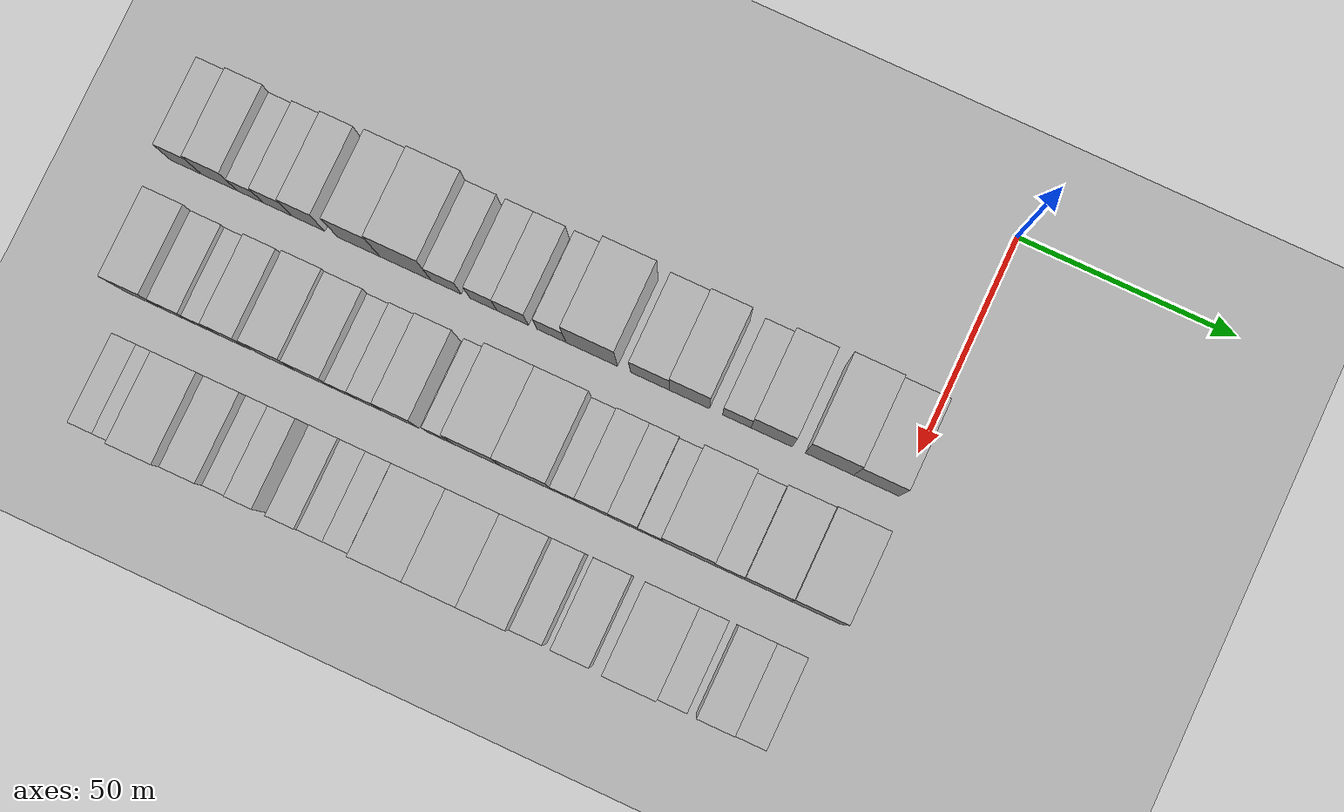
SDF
<sdf version="1.6">
 <world name="default">
  <include><name>ground_plane_1</name><uri>model://HANNAS_ground_plane</uri></include>
  <include>
   <name>ground_plane_2</name>
   <uri>model://HANNAS_ground_plane</uri>
   <pose>100 0 0  0 0 0</pose>
  </include>
  <model name="building_20">
   <static>1</static>
   <pose>50.0000 -164.2807 0 0.000000 0.000000 0.000000</pose>
   <link name="link">
    <pose>0 0 7.50 0 0 0</pose>
    <collision name="collision"><geometry><box><size>20.0000 7.2771 15.0000</size></box></geometry></collision>
    <visual name="visual">
     <cast_shadows>0</cast_shadows>
     <geometry><box><size>20.0000 7.2771 15.0000</size></box></geometry>
     <material>
      <script>
       <uri>model://HANNAS_wall/materials/scripts</uri>
       <uri>model://HANNAS_wall/materials/textures</uri>
       <name>vrc/HANNAS_wall</name>
      </script>
     </material>
    </visual>
   </link>
  </model>
  <model name="building_21">
   <static>1</static>
   <pose>50.0000 -156.4418 0 0.000000 0.000000 0.000000</pose>
   <link name="link">
    <pose>0 0 9.00 0 0 0</pose>
    <collision name="collision"><geometry><box><size>20.0000 8.4006 18.0000</size></box></geometry></collision>
    <visual name="visual">
     <cast_shadows>0</cast_shadows>
     <geometry><box><size>20.0000 8.4006 18.0000</size></box></geometry>
     <material>
      <script>
       <uri>model://HANNAS_wall/materials/scripts</uri>
       <uri>model://HANNAS_wall/materials/textures</uri>
       <name>vrc/HANNAS_wall</name>
      </script>
     </material>
    </visual>
   </link>
  </model>
  <model name="building_22">
   <static>1</static>
   <pose>50.0000 -149.2605 0 0.000000 0.000000 0.000000</pose>
   <link name="link">
    <pose>0 0 6.00 0 0 0</pose>
    <collision name="collision"><geometry><box><size>20.0000 5.9621 12.0000</size></box></geometry></collision>
    <visual name="visual">
     <cast_shadows>0</cast_shadows>
     <geometry><box><size>20.0000 5.9621 12.0000</size></box></geometry>
     <material>
      <script>
       <uri>model://HANNAS_wall/materials/scripts</uri>
       <uri>model://HANNAS_wall/materials/textures</uri>
       <name>vrc/HANNAS_wall</name>
      </script>
     </material>
    </visual>
   </link>
  </model>
  <model name="building_23">
   <static>1</static>
   <pose>50.0000 -142.8116 0 0.000000 0.000000 0.000000</pose>
   <link name="link">
    <pose>0 0 7.50 0 0 0</pose>
    <collision name="collision"><geometry><box><size>20.0000 6.9357 15.0000</size></box></geometry></collision>
    <visual name="visual">
     <cast_shadows>0</cast_shadows>
     <geometry><box><size>20.0000 6.9357 15.0000</size></box></geometry>
     <material>
      <script>
       <uri>model://HANNAS_wall/materials/scripts</uri>
       <uri>model://HANNAS_wall/materials/textures</uri>
       <name>vrc/HANNAS_wall</name>
      </script>
     </material>
    </visual>
   </link>
  </model>
  <model name="building_24">
   <static>1</static>
   <pose>50.0000 -135.6105 0 0.000000 0.000000 0.000000</pose>
   <link name="link">
    <pose>0 0 9.00 0 0 0</pose>
    <collision name="collision"><geometry><box><size>20.0000 7.4665 18.0000</size></box></geometry></collision>
    <visual name="visual">
     <cast_shadows>0</cast_shadows>
     <geometry><box><size>20.0000 7.4665 18.0000</size></box></geometry>
     <material>
      <script>
       <uri>model://HANNAS_wall/materials/scripts</uri>
       <uri>model://HANNAS_wall/materials/textures</uri>
       <name>vrc/HANNAS_wall</name>
      </script>
     </material>
    </visual>
   </link>
  </model>
  <model name="building_25">
   <static>1</static>
   <pose>50.0000 -123.9901 0 0.000000 0.000000 0.000000</pose>
   <link name="link">
    <pose>0 0 10.50 0 0 0</pose>
    <collision name="collision"><geometry><box><size>20.0000 9.7743 21.0000</size></box></geometry></collision>
    <visual name="visual">
     <cast_shadows>0</cast_shadows>
     <geometry><box><size>20.0000 9.7743 21.0000</size></box></geometry>
     <material>
      <script>
       <uri>model://HANNAS_wall/materials/scripts</uri>
       <uri>model://HANNAS_wall/materials/textures</uri>
       <name>vrc/HANNAS_wall</name>
      </script>
     </material>
    </visual>
   </link>
  </model>
  <model name="building_26">
   <static>1</static>
   <pose>50.0000 -113.1574 0 0.000000 0.000000 0.000000</pose>
   <link name="link">
    <pose>0 0 12.00 0 0 0</pose>
    <collision name="collision"><geometry><box><size>20.0000 11.8910 24.0000</size></box></geometry></collision>
    <visual name="visual">
     <cast_shadows>0</cast_shadows>
     <geometry><box><size>20.0000 11.8910 24.0000</size></box></geometry>
     <material>
      <script>
       <uri>model://HANNAS_wall/materials/scripts</uri>
       <uri>model://HANNAS_wall/materials/textures</uri>
       <name>vrc/HANNAS_wall</name>
      </script>
     </material>
    </visual>
   </link>
  </model>
  <model name="building_27">
   <static>1</static>
   <pose>50.0000 -103.7190 0 0.000000 0.000000 0.000000</pose>
   <link name="link">
    <pose>0 0 7.50 0 0 0</pose>
    <collision name="collision"><geometry><box><size>20.0000 6.9859 15.0000</size></box></geometry></collision>
    <visual name="visual">
     <cast_shadows>0</cast_shadows>
     <geometry><box><size>20.0000 6.9859 15.0000</size></box></geometry>
     <material>
      <script>
       <uri>model://HANNAS_wall/materials/scripts</uri>
       <uri>model://HANNAS_wall/materials/textures</uri>
       <name>vrc/HANNAS_wall</name>
      </script>
     </material>
    </visual>
   </link>
  </model>
  <model name="building_28">
   <static>1</static>
   <pose>50.0000 -95.0902 0 0.000000 0.000000 0.000000</pose>
   <link name="link">
    <pose>0 0 7.50 0 0 0</pose>
    <collision name="collision"><geometry><box><size>20.0000 6.2716 15.0000</size></box></geometry></collision>
    <visual name="visual">
     <cast_shadows>0</cast_shadows>
     <geometry><box><size>20.0000 6.2716 15.0000</size></box></geometry>
     <material>
      <script>
       <uri>model://HANNAS_wall/materials/scripts</uri>
       <uri>model://HANNAS_wall/materials/textures</uri>
       <name>vrc/HANNAS_wall</name>
      </script>
     </material>
    </visual>
   </link>
  </model>
  <model name="building_29">
   <static>1</static>
   <pose>50.0000 -88.3531 0 0.000000 0.000000 0.000000</pose>
   <link name="link">
    <pose>0 0 7.50 0 0 0</pose>
    <collision name="collision"><geometry><box><size>20.0000 7.2026 15.0000</size></box></geometry></collision>
    <visual name="visual">
     <cast_shadows>0</cast_shadows>
     <geometry><box><size>20.0000 7.2026 15.0000</size></box></geometry>
     <material>
      <script>
       <uri>model://HANNAS_wall/materials/scripts</uri>
       <uri>model://HANNAS_wall/materials/textures</uri>
       <name>vrc/HANNAS_wall</name>
      </script>
     </material>
    </visual>
   </link>
  </model>
  <model name="building_30">
   <static>1</static>
   <pose>50.0000 -79.4296 0 0.000000 0.000000 0.000000</pose>
   <link name="link">
    <pose>0 0 7.50 0 0 0</pose>
    <collision name="collision"><geometry><box><size>20.0000 6.6446 15.0000</size></box></geometry></collision>
    <visual name="visual">
     <cast_shadows>0</cast_shadows>
     <geometry><box><size>20.0000 6.6446 15.0000</size></box></geometry>
     <material>
      <script>
       <uri>model://HANNAS_wall/materials/scripts</uri>
       <uri>model://HANNAS_wall/materials/textures</uri>
       <name>vrc/HANNAS_wall</name>
      </script>
     </material>
    </visual>
   </link>
  </model>
  <model name="building_31">
   <static>1</static>
   <pose>50.0000 -70.2010 0 0.000000 0.000000 0.000000</pose>
   <link name="link">
    <pose>0 0 12.00 0 0 0</pose>
    <collision name="collision"><geometry><box><size>20.0000 11.8125 24.0000</size></box></geometry></collision>
    <visual name="visual">
     <cast_shadows>0</cast_shadows>
     <geometry><box><size>20.0000 11.8125 24.0000</size></box></geometry>
     <material>
      <script>
       <uri>model://HANNAS_wall/materials/scripts</uri>
       <uri>model://HANNAS_wall/materials/textures</uri>
       <name>vrc/HANNAS_wall</name>
      </script>
     </material>
    </visual>
   </link>
  </model>
  <model name="building_32">
   <static>1</static>
   <pose>50.0000 -56.8380 0 0.000000 0.000000 0.000000</pose>
   <link name="link">
    <pose>0 0 9.00 0 0 0</pose>
    <collision name="collision"><geometry><box><size>20.0000 8.9135 18.0000</size></box></geometry></collision>
    <visual name="visual">
     <cast_shadows>0</cast_shadows>
     <geometry><box><size>20.0000 8.9135 18.0000</size></box></geometry>
     <material>
      <script>
       <uri>model://HANNAS_wall/materials/scripts</uri>
       <uri>model://HANNAS_wall/materials/textures</uri>
       <name>vrc/HANNAS_wall</name>
      </script>
     </material>
    </visual>
   </link>
  </model>
  <model name="building_33">
   <static>1</static>
   <pose>50.0000 -47.8218 0 0.000000 0.000000 0.000000</pose>
   <link name="link">
    <pose>0 0 10.50 0 0 0</pose>
    <collision name="collision"><geometry><box><size>20.0000 9.1189 21.0000</size></box></geometry></collision>
    <visual name="visual">
     <cast_shadows>0</cast_shadows>
     <geometry><box><size>20.0000 9.1189 21.0000</size></box></geometry>
     <material>
      <script>
       <uri>model://HANNAS_wall/materials/scripts</uri>
       <uri>model://HANNAS_wall/materials/textures</uri>
       <name>vrc/HANNAS_wall</name>
      </script>
     </material>
    </visual>
   </link>
  </model>
  <model name="building_34">
   <static>1</static>
   <pose>50.0000 -37.0058 0 0.000000 0.000000 0.000000</pose>
   <link name="link">
    <pose>0 0 7.50 0 0 0</pose>
    <collision name="collision"><geometry><box><size>20.0000 6.5132 15.0000</size></box></geometry></collision>
    <visual name="visual">
     <cast_shadows>0</cast_shadows>
     <geometry><box><size>20.0000 6.5132 15.0000</size></box></geometry>
     <material>
      <script>
       <uri>model://HANNAS_wall/materials/scripts</uri>
       <uri>model://HANNAS_wall/materials/textures</uri>
       <name>vrc/HANNAS_wall</name>
      </script>
     </material>
    </visual>
   </link>
  </model>
  <model name="building_35">
   <static>1</static>
   <pose>50.0000 -29.0701 0 0.000000 0.000000 0.000000</pose>
   <link name="link">
    <pose>0 0 10.50 0 0 0</pose>
    <collision name="collision"><geometry><box><size>20.0000 9.3582 21.0000</size></box></geometry></collision>
    <visual name="visual">
     <cast_shadows>0</cast_shadows>
     <geometry><box><size>20.0000 9.3582 21.0000</size></box></geometry>
     <material>
      <script>
       <uri>model://HANNAS_wall/materials/scripts</uri>
       <uri>model://HANNAS_wall/materials/textures</uri>
       <name>vrc/HANNAS_wall</name>
      </script>
     </material>
    </visual>
   </link>
  </model>
  <model name="building_36">
   <static>1</static>
   <pose>50.0000 -15.8890 0 0.000000 0.000000 0.000000</pose>
   <link name="link">
    <pose>0 0 12.00 0 0 0</pose>
    <collision name="collision"><geometry><box><size>20.0000 11.0039 24.0000</size></box></geometry></collision>
    <visual name="visual">
     <cast_shadows>0</cast_shadows>
     <geometry><box><size>20.0000 11.0039 24.0000</size></box></geometry>
     <material>
      <script>
       <uri>model://HANNAS_wall/materials/scripts</uri>
       <uri>model://HANNAS_wall/materials/textures</uri>
       <name>vrc/HANNAS_wall</name>
      </script>
     </material>
    </visual>
   </link>
  </model>
  <model name="building_37">
   <static>1</static>
   <pose>50.0000 -5.2631 0 0.000000 0.000000 0.000000</pose>
   <link name="link">
    <pose>0 0 10.50 0 0 0</pose>
    <collision name="collision"><geometry><box><size>20.0000 10.2481 21.0000</size></box></geometry></collision>
    <visual name="visual">
     <cast_shadows>0</cast_shadows>
     <geometry><box><size>20.0000 10.2481 21.0000</size></box></geometry>
     <material>
      <script>
       <uri>model://HANNAS_wall/materials/scripts</uri>
       <uri>model://HANNAS_wall/materials/textures</uri>
       <name>vrc/HANNAS_wall</name>
      </script>
     </material>
    </visual>
   </link>
  </model>
  <model name="building_92">
   <static>1</static>
   <pose>79.0000 -159.4178 0 0.000000 0.000000 0.000000</pose>
   <link name="link">
    <pose>0 0 10.50 0 0 0</pose>
    <collision name="collision"><geometry><box><size>20.0000 8.9684 21.0000</size></box></geometry></collision>
    <visual name="visual">
     <cast_shadows>0</cast_shadows>
     <geometry><box><size>20.0000 8.9684 21.0000</size></box></geometry>
     <material>
      <script>
       <uri>model://HANNAS_wall/materials/scripts</uri>
       <uri>model://HANNAS_wall/materials/textures</uri>
       <name>vrc/HANNAS_wall</name>
      </script>
     </material>
    </visual>
   </link>
  </model>
  <model name="building_93">
   <static>1</static>
   <pose>79.0000 -151.4813 0 0.000000 0.000000 0.000000</pose>
   <link name="link">
    <pose>0 0 7.50 0 0 0</pose>
    <collision name="collision"><geometry><box><size>20.0000 6.9046 15.0000</size></box></geometry></collision>
    <visual name="visual">
     <cast_shadows>0</cast_shadows>
     <geometry><box><size>20.0000 6.9046 15.0000</size></box></geometry>
     <material>
      <script>
       <uri>model://HANNAS_wall/materials/scripts</uri>
       <uri>model://HANNAS_wall/materials/textures</uri>
       <name>vrc/HANNAS_wall</name>
      </script>
     </material>
    </visual>
   </link>
  </model>
  <model name="building_94">
   <static>1</static>
   <pose>79.0000 -145.1459 0 0.000000 0.000000 0.000000</pose>
   <link name="link">
    <pose>0 0 6.00 0 0 0</pose>
    <collision name="collision"><geometry><box><size>20.0000 5.7663 12.0000</size></box></geometry></collision>
    <visual name="visual">
     <cast_shadows>0</cast_shadows>
     <geometry><box><size>20.0000 5.7663 12.0000</size></box></geometry>
     <material>
      <script>
       <uri>model://HANNAS_wall/materials/scripts</uri>
       <uri>model://HANNAS_wall/materials/textures</uri>
       <name>vrc/HANNAS_wall</name>
      </script>
     </material>
    </visual>
   </link>
  </model>
  <model name="building_95">
   <static>1</static>
   <pose>79.0000 -138.6442 0 0.000000 0.000000 0.000000</pose>
   <link name="link">
    <pose>0 0 9.00 0 0 0</pose>
    <collision name="collision"><geometry><box><size>20.0000 7.2369 18.0000</size></box></geometry></collision>
    <visual name="visual">
     <cast_shadows>0</cast_shadows>
     <geometry><box><size>20.0000 7.2369 18.0000</size></box></geometry>
     <material>
      <script>
       <uri>model://HANNAS_wall/materials/scripts</uri>
       <uri>model://HANNAS_wall/materials/textures</uri>
       <name>vrc/HANNAS_wall</name>
      </script>
     </material>
    </visual>
   </link>
  </model>
  <model name="building_96">
   <static>1</static>
   <pose>79.0000 -128.6386 0 0.000000 0.000000 0.000000</pose>
   <link name="link">
    <pose>0 0 10.50 0 0 0</pose>
    <collision name="collision"><geometry><box><size>20.0000 8.7743 21.0000</size></box></geometry></collision>
    <visual name="visual">
     <cast_shadows>0</cast_shadows>
     <geometry><box><size>20.0000 8.7743 21.0000</size></box></geometry>
     <material>
      <script>
       <uri>model://HANNAS_wall/materials/scripts</uri>
       <uri>model://HANNAS_wall/materials/textures</uri>
       <name>vrc/HANNAS_wall</name>
      </script>
     </material>
    </visual>
   </link>
  </model>
  <model name="building_97">
   <static>1</static>
   <pose>79.0000 -120.0052 0 0.000000 0.000000 0.000000</pose>
   <link name="link">
    <pose>0 0 9.00 0 0 0</pose>
    <collision name="collision"><geometry><box><size>20.0000 8.4926 18.0000</size></box></geometry></collision>
    <visual name="visual">
     <cast_shadows>0</cast_shadows>
     <geometry><box><size>20.0000 8.4926 18.0000</size></box></geometry>
     <material>
      <script>
       <uri>model://HANNAS_wall/materials/scripts</uri>
       <uri>model://HANNAS_wall/materials/textures</uri>
       <name>vrc/HANNAS_wall</name>
      </script>
     </material>
    </visual>
   </link>
  </model>
  <model name="building_98">
   <static>1</static>
   <pose>79.0000 -113.0529 0 0.000000 0.000000 0.000000</pose>
   <link name="link">
    <pose>0 0 6.00 0 0 0</pose>
    <collision name="collision"><geometry><box><size>20.0000 5.4120 12.0000</size></box></geometry></collision>
    <visual name="visual">
     <cast_shadows>0</cast_shadows>
     <geometry><box><size>20.0000 5.4120 12.0000</size></box></geometry>
     <material>
      <script>
       <uri>model://HANNAS_wall/materials/scripts</uri>
       <uri>model://HANNAS_wall/materials/textures</uri>
       <name>vrc/HANNAS_wall</name>
      </script>
     </material>
    </visual>
   </link>
  </model>
  <model name="building_99">
   <static>1</static>
   <pose>79.0000 -107.2950 0 0.000000 0.000000 0.000000</pose>
   <link name="link">
    <pose>0 0 7.50 0 0 0</pose>
    <collision name="collision"><geometry><box><size>20.0000 6.1037 15.0000</size></box></geometry></collision>
    <visual name="visual">
     <cast_shadows>0</cast_shadows>
     <geometry><box><size>20.0000 6.1037 15.0000</size></box></geometry>
     <material>
      <script>
       <uri>model://HANNAS_wall/materials/scripts</uri>
       <uri>model://HANNAS_wall/materials/textures</uri>
       <name>vrc/HANNAS_wall</name>
      </script>
     </material>
    </visual>
   </link>
  </model>
  <model name="building_100">
   <static>1</static>
   <pose>79.0000 -100.1335 0 0.000000 0.000000 0.000000</pose>
   <link name="link">
    <pose>0 0 9.00 0 0 0</pose>
    <collision name="collision"><geometry><box><size>20.0000 8.2194 18.0000</size></box></geometry></collision>
    <visual name="visual">
     <cast_shadows>0</cast_shadows>
     <geometry><box><size>20.0000 8.2194 18.0000</size></box></geometry>
     <material>
      <script>
       <uri>model://HANNAS_wall/materials/scripts</uri>
       <uri>model://HANNAS_wall/materials/textures</uri>
       <name>vrc/HANNAS_wall</name>
      </script>
     </material>
    </visual>
   </link>
  </model>
  <model name="building_101">
   <static>1</static>
   <pose>79.0000 -91.0988 0 0.000000 0.000000 0.000000</pose>
   <link name="link">
    <pose>0 0 6.00 0 0 0</pose>
    <collision name="collision"><geometry><box><size>20.0000 5.8499 12.0000</size></box></geometry></collision>
    <visual name="visual">
     <cast_shadows>0</cast_shadows>
     <geometry><box><size>20.0000 5.8499 12.0000</size></box></geometry>
     <material>
      <script>
       <uri>model://HANNAS_wall/materials/scripts</uri>
       <uri>model://HANNAS_wall/materials/textures</uri>
       <name>vrc/HANNAS_wall</name>
      </script>
     </material>
    </visual>
   </link>
  </model>
  <model name="building_102">
   <static>1</static>
   <pose>79.0000 -82.7172 0 0.000000 0.000000 0.000000</pose>
   <link name="link">
    <pose>0 0 12.00 0 0 0</pose>
    <collision name="collision"><geometry><box><size>20.0000 10.9133 24.0000</size></box></geometry></collision>
    <visual name="visual">
     <cast_shadows>0</cast_shadows>
     <geometry><box><size>20.0000 10.9133 24.0000</size></box></geometry>
     <material>
      <script>
       <uri>model://HANNAS_wall/materials/scripts</uri>
       <uri>model://HANNAS_wall/materials/textures</uri>
       <name>vrc/HANNAS_wall</name>
      </script>
     </material>
    </visual>
   </link>
  </model>
  <model name="building_103">
   <static>1</static>
   <pose>79.0000 -71.3776 0 0.000000 0.000000 0.000000</pose>
   <link name="link">
    <pose>0 0 12.00 0 0 0</pose>
    <collision name="collision"><geometry><box><size>20.0000 11.7660 24.0000</size></box></geometry></collision>
    <visual name="visual">
     <cast_shadows>0</cast_shadows>
     <geometry><box><size>20.0000 11.7660 24.0000</size></box></geometry>
     <material>
      <script>
       <uri>model://HANNAS_wall/materials/scripts</uri>
       <uri>model://HANNAS_wall/materials/textures</uri>
       <name>vrc/HANNAS_wall</name>
      </script>
     </material>
    </visual>
   </link>
  </model>
  <model name="building_104">
   <static>1</static>
   <pose>79.0000 -62.6533 0 0.000000 0.000000 0.000000</pose>
   <link name="link">
    <pose>0 0 6.00 0 0 0</pose>
    <collision name="collision"><geometry><box><size>20.0000 5.6826 12.0000</size></box></geometry></collision>
    <visual name="visual">
     <cast_shadows>0</cast_shadows>
     <geometry><box><size>20.0000 5.6826 12.0000</size></box></geometry>
     <material>
      <script>
       <uri>model://HANNAS_wall/materials/scripts</uri>
       <uri>model://HANNAS_wall/materials/textures</uri>
       <name>vrc/HANNAS_wall</name>
      </script>
     </material>
    </visual>
   </link>
  </model>
  <model name="building_105">
   <static>1</static>
   <pose>79.0000 -56.1339 0 0.000000 0.000000 0.000000</pose>
   <link name="link">
    <pose>0 0 7.50 0 0 0</pose>
    <collision name="collision"><geometry><box><size>20.0000 7.3562 15.0000</size></box></geometry></collision>
    <visual name="visual">
     <cast_shadows>0</cast_shadows>
     <geometry><box><size>20.0000 7.3562 15.0000</size></box></geometry>
     <material>
      <script>
       <uri>model://HANNAS_wall/materials/scripts</uri>
       <uri>model://HANNAS_wall/materials/textures</uri>
       <name>vrc/HANNAS_wall</name>
      </script>
     </material>
    </visual>
   </link>
  </model>
  <model name="building_106">
   <static>1</static>
   <pose>79.0000 -49.1866 0 0.000000 0.000000 0.000000</pose>
   <link name="link">
    <pose>0 0 7.50 0 0 0</pose>
    <collision name="collision"><geometry><box><size>20.0000 6.5384 15.0000</size></box></geometry></collision>
    <visual name="visual">
     <cast_shadows>0</cast_shadows>
     <geometry><box><size>20.0000 6.5384 15.0000</size></box></geometry>
     <material>
      <script>
       <uri>model://HANNAS_wall/materials/scripts</uri>
       <uri>model://HANNAS_wall/materials/textures</uri>
       <name>vrc/HANNAS_wall</name>
      </script>
     </material>
    </visual>
   </link>
  </model>
  <model name="building_107">
   <static>1</static>
   <pose>79.0000 -43.1861 0 0.000000 0.000000 0.000000</pose>
   <link name="link">
    <pose>0 0 6.00 0 0 0</pose>
    <collision name="collision"><geometry><box><size>20.0000 5.4626 12.0000</size></box></geometry></collision>
    <visual name="visual">
     <cast_shadows>0</cast_shadows>
     <geometry><box><size>20.0000 5.4626 12.0000</size></box></geometry>
     <material>
      <script>
       <uri>model://HANNAS_wall/materials/scripts</uri>
       <uri>model://HANNAS_wall/materials/textures</uri>
       <name>vrc/HANNAS_wall</name>
      </script>
     </material>
    </visual>
   </link>
  </model>
  <model name="building_108">
   <static>1</static>
   <pose>79.0000 -34.6478 0 0.000000 0.000000 0.000000</pose>
   <link name="link">
    <pose>0 0 12.00 0 0 0</pose>
    <collision name="collision"><geometry><box><size>20.0000 11.6141 24.0000</size></box></geometry></collision>
    <visual name="visual">
     <cast_shadows>0</cast_shadows>
     <geometry><box><size>20.0000 11.6141 24.0000</size></box></geometry>
     <material>
      <script>
       <uri>model://HANNAS_wall/materials/scripts</uri>
       <uri>model://HANNAS_wall/materials/textures</uri>
       <name>vrc/HANNAS_wall</name>
      </script>
     </material>
    </visual>
   </link>
  </model>
  <model name="building_109">
   <static>1</static>
   <pose>79.0000 -25.5601 0 0.000000 0.000000 0.000000</pose>
   <link name="link">
    <pose>0 0 7.50 0 0 0</pose>
    <collision name="collision"><geometry><box><size>20.0000 6.5613 15.0000</size></box></geometry></collision>
    <visual name="visual">
     <cast_shadows>0</cast_shadows>
     <geometry><box><size>20.0000 6.5613 15.0000</size></box></geometry>
     <material>
      <script>
       <uri>model://HANNAS_wall/materials/scripts</uri>
       <uri>model://HANNAS_wall/materials/textures</uri>
       <name>vrc/HANNAS_wall</name>
      </script>
     </material>
    </visual>
   </link>
  </model>
  <model name="building_110">
   <static>1</static>
   <pose>79.0000 -17.0377 0 0.000000 0.000000 0.000000</pose>
   <link name="link">
    <pose>0 0 10.50 0 0 0</pose>
    <collision name="collision"><geometry><box><size>20.0000 10.4834 21.0000</size></box></geometry></collision>
    <visual name="visual">
     <cast_shadows>0</cast_shadows>
     <geometry><box><size>20.0000 10.4834 21.0000</size></box></geometry>
     <material>
      <script>
       <uri>model://HANNAS_wall/materials/scripts</uri>
       <uri>model://HANNAS_wall/materials/textures</uri>
       <name>vrc/HANNAS_wall</name>
      </script>
     </material>
    </visual>
   </link>
  </model>
  <model name="building_111">
   <static>1</static>
   <pose>79.0000 -6.0008 0 0.000000 0.000000 0.000000</pose>
   <link name="link">
    <pose>0 0 12.00 0 0 0</pose>
    <collision name="collision"><geometry><box><size>20.0000 11.5903 24.0000</size></box></geometry></collision>
    <visual name="visual">
     <cast_shadows>0</cast_shadows>
     <geometry><box><size>20.0000 11.5903 24.0000</size></box></geometry>
     <material>
      <script>
       <uri>model://HANNAS_wall/materials/scripts</uri>
       <uri>model://HANNAS_wall/materials/textures</uri>
       <name>vrc/HANNAS_wall</name>
      </script>
     </material>
    </visual>
   </link>
  </model>
  <model name="building_167">
   <static>1</static>
   <pose>108.0000 -156.4168 0 0.000000 0.000000 0.000000</pose>
   <link name="link">
    <pose>0 0 6.00 0 0 0</pose>
    <collision name="collision"><geometry><box><size>20.0000 5.5181 12.0000</size></box></geometry></collision>
    <visual name="visual">
     <cast_shadows>0</cast_shadows>
     <geometry><box><size>20.0000 5.5181 12.0000</size></box></geometry>
     <material>
      <script>
       <uri>model://HANNAS_wall/materials/scripts</uri>
       <uri>model://HANNAS_wall/materials/textures</uri>
       <name>vrc/HANNAS_wall</name>
      </script>
     </material>
    </visual>
   </link>
  </model>
  <model name="building_168">
   <static>1</static>
   <pose>108.0000 -150.7217 0 0.000000 0.000000 0.000000</pose>
   <link name="link">
    <pose>0 0 6.00 0 0 0</pose>
    <collision name="collision"><geometry><box><size>20.0000 5.8722 12.0000</size></box></geometry></collision>
    <visual name="visual">
     <cast_shadows>0</cast_shadows>
     <geometry><box><size>20.0000 5.8722 12.0000</size></box></geometry>
     <material>
      <script>
       <uri>model://HANNAS_wall/materials/scripts</uri>
       <uri>model://HANNAS_wall/materials/textures</uri>
       <name>vrc/HANNAS_wall</name>
      </script>
     </material>
    </visual>
   </link>
  </model>
  <model name="building_169">
   <static>1</static>
   <pose>108.0000 -141.7927 0 0.000000 0.000000 0.000000</pose>
   <link name="link">
    <pose>0 0 12.00 0 0 0</pose>
    <collision name="collision"><geometry><box><size>20.0000 9.9857 24.0000</size></box></geometry></collision>
    <visual name="visual">
     <cast_shadows>0</cast_shadows>
     <geometry><box><size>20.0000 9.9857 24.0000</size></box></geometry>
     <material>
      <script>
       <uri>model://HANNAS_wall/materials/scripts</uri>
       <uri>model://HANNAS_wall/materials/textures</uri>
       <name>vrc/HANNAS_wall</name>
      </script>
     </material>
    </visual>
   </link>
  </model>
  <model name="building_170">
   <static>1</static>
   <pose>108.0000 -132.8439 0 0.000000 0.000000 0.000000</pose>
   <link name="link">
    <pose>0 0 9.00 0 0 0</pose>
    <collision name="collision"><geometry><box><size>20.0000 7.9119 18.0000</size></box></geometry></collision>
    <visual name="visual">
     <cast_shadows>0</cast_shadows>
     <geometry><box><size>20.0000 7.9119 18.0000</size></box></geometry>
     <material>
      <script>
       <uri>model://HANNAS_wall/materials/scripts</uri>
       <uri>model://HANNAS_wall/materials/textures</uri>
       <name>vrc/HANNAS_wall</name>
      </script>
     </material>
    </visual>
   </link>
  </model>
  <model name="building_171">
   <static>1</static>
   <pose>108.0000 -126.1063 0 0.000000 0.000000 0.000000</pose>
   <link name="link">
    <pose>0 0 6.00 0 0 0</pose>
    <collision name="collision"><geometry><box><size>20.0000 5.5632 12.0000</size></box></geometry></collision>
    <visual name="visual">
     <cast_shadows>0</cast_shadows>
     <geometry><box><size>20.0000 5.5632 12.0000</size></box></geometry>
     <material>
      <script>
       <uri>model://HANNAS_wall/materials/scripts</uri>
       <uri>model://HANNAS_wall/materials/textures</uri>
       <name>vrc/HANNAS_wall</name>
      </script>
     </material>
    </visual>
   </link>
  </model>
  <model name="building_172">
   <static>1</static>
   <pose>108.0000 -120.2344 0 0.000000 0.000000 0.000000</pose>
   <link name="link">
    <pose>0 0 7.50 0 0 0</pose>
    <collision name="collision"><geometry><box><size>20.0000 6.1807 15.0000</size></box></geometry></collision>
    <visual name="visual">
     <cast_shadows>0</cast_shadows>
     <geometry><box><size>20.0000 6.1807 15.0000</size></box></geometry>
     <material>
      <script>
       <uri>model://HANNAS_wall/materials/scripts</uri>
       <uri>model://HANNAS_wall/materials/textures</uri>
       <name>vrc/HANNAS_wall</name>
      </script>
     </material>
    </visual>
   </link>
  </model>
  <model name="building_173">
   <static>1</static>
   <pose>108.0000 -110.9515 0 0.000000 0.000000 0.000000</pose>
   <link name="link">
    <pose>0 0 7.50 0 0 0</pose>
    <collision name="collision"><geometry><box><size>20.0000 6.3850 15.0000</size></box></geometry></collision>
    <visual name="visual">
     <cast_shadows>0</cast_shadows>
     <geometry><box><size>20.0000 6.3850 15.0000</size></box></geometry>
     <material>
      <script>
       <uri>model://HANNAS_wall/materials/scripts</uri>
       <uri>model://HANNAS_wall/materials/textures</uri>
       <name>vrc/HANNAS_wall</name>
      </script>
     </material>
    </visual>
   </link>
  </model>
  <model name="building_174">
   <static>1</static>
   <pose>108.0000 -104.9263 0 0.000000 0.000000 0.000000</pose>
   <link name="link">
    <pose>0 0 6.00 0 0 0</pose>
    <collision name="collision"><geometry><box><size>20.0000 5.6656 12.0000</size></box></geometry></collision>
    <visual name="visual">
     <cast_shadows>0</cast_shadows>
     <geometry><box><size>20.0000 5.6656 12.0000</size></box></geometry>
     <material>
      <script>
       <uri>model://HANNAS_wall/materials/scripts</uri>
       <uri>model://HANNAS_wall/materials/textures</uri>
       <name>vrc/HANNAS_wall</name>
      </script>
     </material>
    </visual>
   </link>
  </model>
  <model name="building_175">
   <static>1</static>
   <pose>108.0000 -99.2547 0 0.000000 0.000000 0.000000</pose>
   <link name="link">
    <pose>0 0 6.00 0 0 0</pose>
    <collision name="collision"><geometry><box><size>20.0000 5.6776 12.0000</size></box></geometry></collision>
    <visual name="visual">
     <cast_shadows>0</cast_shadows>
     <geometry><box><size>20.0000 5.6776 12.0000</size></box></geometry>
     <material>
      <script>
       <uri>model://HANNAS_wall/materials/scripts</uri>
       <uri>model://HANNAS_wall/materials/textures</uri>
       <name>vrc/HANNAS_wall</name>
      </script>
     </material>
    </visual>
   </link>
  </model>
  <model name="building_176">
   <static>1</static>
   <pose>108.0000 -88.5406 0 0.000000 0.000000 0.000000</pose>
   <link name="link">
    <pose>0 0 12.00 0 0 0</pose>
    <collision name="collision"><geometry><box><size>20.0000 11.7504 24.0000</size></box></geometry></collision>
    <visual name="visual">
     <cast_shadows>0</cast_shadows>
     <geometry><box><size>20.0000 11.7504 24.0000</size></box></geometry>
     <material>
      <script>
       <uri>model://HANNAS_wall/materials/scripts</uri>
       <uri>model://HANNAS_wall/materials/textures</uri>
       <name>vrc/HANNAS_wall</name>
      </script>
     </material>
    </visual>
   </link>
  </model>
  <model name="building_177">
   <static>1</static>
   <pose>108.0000 -76.8437 0 0.000000 0.000000 0.000000</pose>
   <link name="link">
    <pose>0 0 12.00 0 0 0</pose>
    <collision name="collision"><geometry><box><size>20.0000 11.6434 24.0000</size></box></geometry></collision>
    <visual name="visual">
     <cast_shadows>0</cast_shadows>
     <geometry><box><size>20.0000 11.6434 24.0000</size></box></geometry>
     <material>
      <script>
       <uri>model://HANNAS_wall/materials/scripts</uri>
       <uri>model://HANNAS_wall/materials/textures</uri>
       <name>vrc/HANNAS_wall</name>
      </script>
     </material>
    </visual>
   </link>
  </model>
  <model name="building_178">
   <static>1</static>
   <pose>108.0000 -65.6956 0 0.000000 0.000000 0.000000</pose>
   <link name="link">
    <pose>0 0 12.00 0 0 0</pose>
    <collision name="collision"><geometry><box><size>20.0000 10.6529 24.0000</size></box></geometry></collision>
    <visual name="visual">
     <cast_shadows>0</cast_shadows>
     <geometry><box><size>20.0000 10.6529 24.0000</size></box></geometry>
     <material>
      <script>
       <uri>model://HANNAS_wall/materials/scripts</uri>
       <uri>model://HANNAS_wall/materials/textures</uri>
       <name>vrc/HANNAS_wall</name>
      </script>
     </material>
    </visual>
   </link>
  </model>
  <model name="building_179">
   <static>1</static>
   <pose>108.0000 -56.7861 0 0.000000 0.000000 0.000000</pose>
   <link name="link">
    <pose>0 0 7.50 0 0 0</pose>
    <collision name="collision"><geometry><box><size>20.0000 7.1661 15.0000</size></box></geometry></collision>
    <visual name="visual">
     <cast_shadows>0</cast_shadows>
     <geometry><box><size>20.0000 7.1661 15.0000</size></box></geometry>
     <material>
      <script>
       <uri>model://HANNAS_wall/materials/scripts</uri>
       <uri>model://HANNAS_wall/materials/textures</uri>
       <name>vrc/HANNAS_wall</name>
      </script>
     </material>
    </visual>
   </link>
  </model>
  <model name="building_180">
   <static>1</static>
   <pose>108.0000 -46.9928 0 0.000000 0.000000 0.000000</pose>
   <link name="link">
    <pose>0 0 9.00 0 0 0</pose>
    <collision name="collision"><geometry><box><size>20.0000 8.4205 18.0000</size></box></geometry></collision>
    <visual name="visual">
     <cast_shadows>0</cast_shadows>
     <geometry><box><size>20.0000 8.4205 18.0000</size></box></geometry>
     <material>
      <script>
       <uri>model://HANNAS_wall/materials/scripts</uri>
       <uri>model://HANNAS_wall/materials/textures</uri>
       <name>vrc/HANNAS_wall</name>
      </script>
     </material>
    </visual>
   </link>
  </model>
  <model name="building_181">
   <static>1</static>
   <pose>108.0000 -33.9239 0 0.000000 0.000000 0.000000</pose>
   <link name="link">
    <pose>0 0 12.00 0 0 0</pose>
    <collision name="collision"><geometry><box><size>20.0000 11.7175 24.0000</size></box></geometry></collision>
    <visual name="visual">
     <cast_shadows>0</cast_shadows>
     <geometry><box><size>20.0000 11.7175 24.0000</size></box></geometry>
     <material>
      <script>
       <uri>model://HANNAS_wall/materials/scripts</uri>
       <uri>model://HANNAS_wall/materials/textures</uri>
       <name>vrc/HANNAS_wall</name>
      </script>
     </material>
    </visual>
   </link>
  </model>
  <model name="building_182">
   <static>1</static>
   <pose>108.0000 -24.7889 0 0.000000 0.000000 0.000000</pose>
   <link name="link">
    <pose>0 0 7.50 0 0 0</pose>
    <collision name="collision"><geometry><box><size>20.0000 6.5526 15.0000</size></box></geometry></collision>
    <visual name="visual">
     <cast_shadows>0</cast_shadows>
     <geometry><box><size>20.0000 6.5526 15.0000</size></box></geometry>
     <material>
      <script>
       <uri>model://HANNAS_wall/materials/scripts</uri>
       <uri>model://HANNAS_wall/materials/textures</uri>
       <name>vrc/HANNAS_wall</name>
      </script>
     </material>
    </visual>
   </link>
  </model>
  <model name="building_183">
   <static>1</static>
   <pose>108.0000 -15.3531 0 0.000000 0.000000 0.000000</pose>
   <link name="link">
    <pose>0 0 9.00 0 0 0</pose>
    <collision name="collision"><geometry><box><size>20.0000 8.3190 18.0000</size></box></geometry></collision>
    <visual name="visual">
     <cast_shadows>0</cast_shadows>
     <geometry><box><size>20.0000 8.3190 18.0000</size></box></geometry>
     <material>
      <script>
       <uri>model://HANNAS_wall/materials/scripts</uri>
       <uri>model://HANNAS_wall/materials/textures</uri>
       <name>vrc/HANNAS_wall</name>
      </script>
     </material>
    </visual>
   </link>
  </model>
  <model name="building_184">
   <static>1</static>
   <pose>108.0000 -7.7368 0 0.000000 0.000000 0.000000</pose>
   <link name="link">
    <pose>0 0 7.50 0 0 0</pose>
    <collision name="collision"><geometry><box><size>20.0000 6.9136 15.0000</size></box></geometry></collision>
    <visual name="visual">
     <cast_shadows>0</cast_shadows>
     <geometry><box><size>20.0000 6.9136 15.0000</size></box></geometry>
     <material>
      <script>
       <uri>model://HANNAS_wall/materials/scripts</uri>
       <uri>model://HANNAS_wall/materials/textures</uri>
       <name>vrc/HANNAS_wall</name>
      </script>
     </material>
    </visual>
   </link>
  </model>
 </world>
</sdf>
